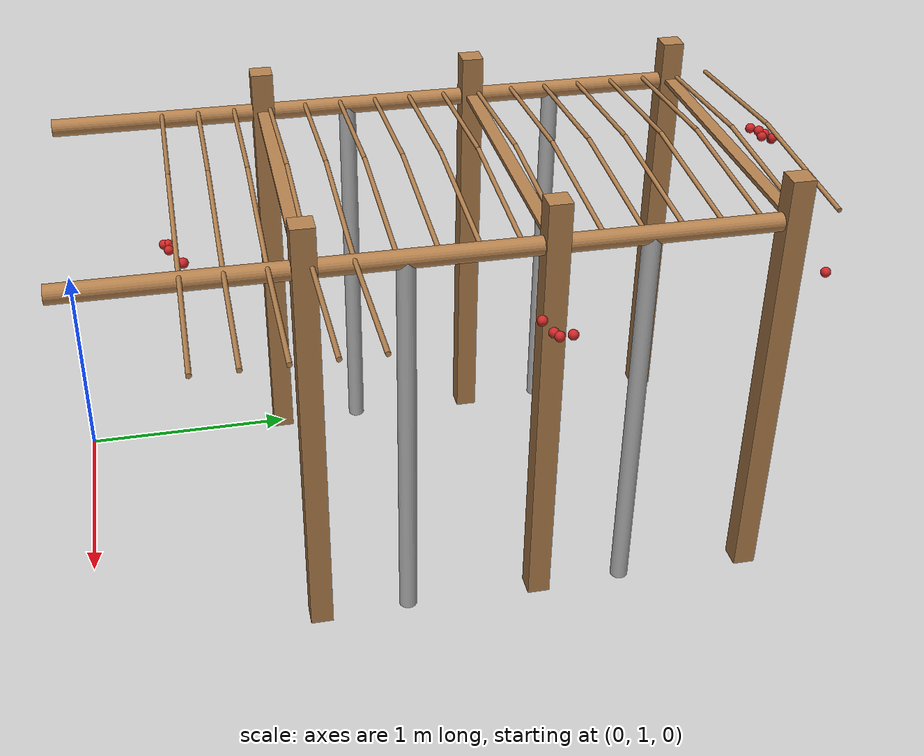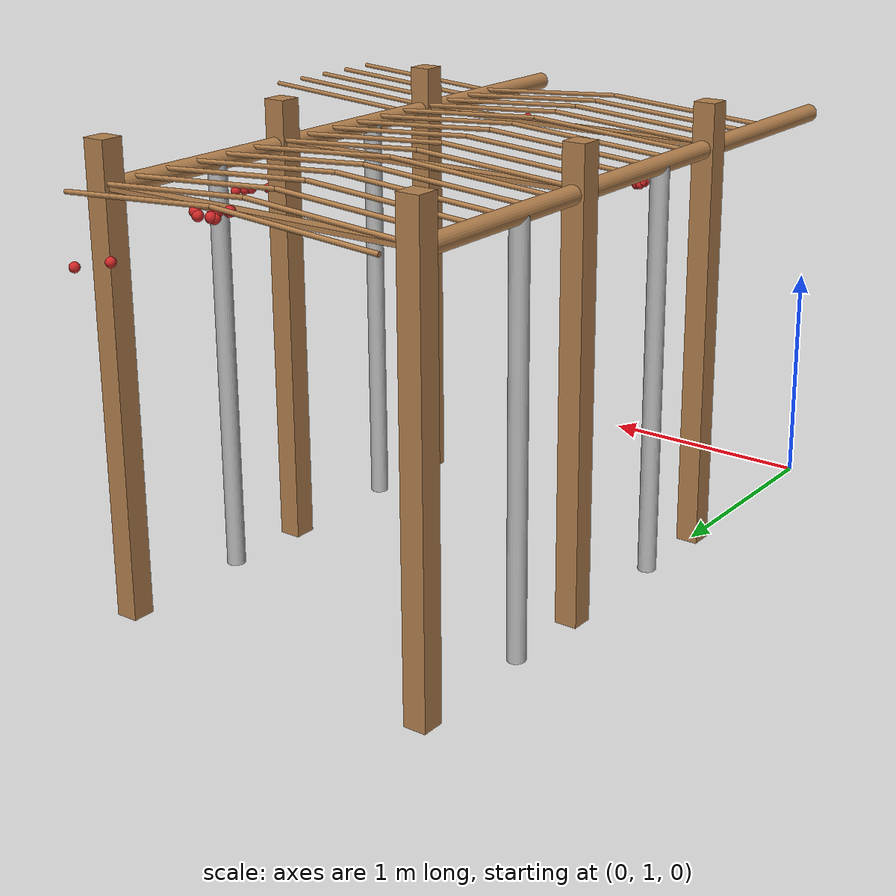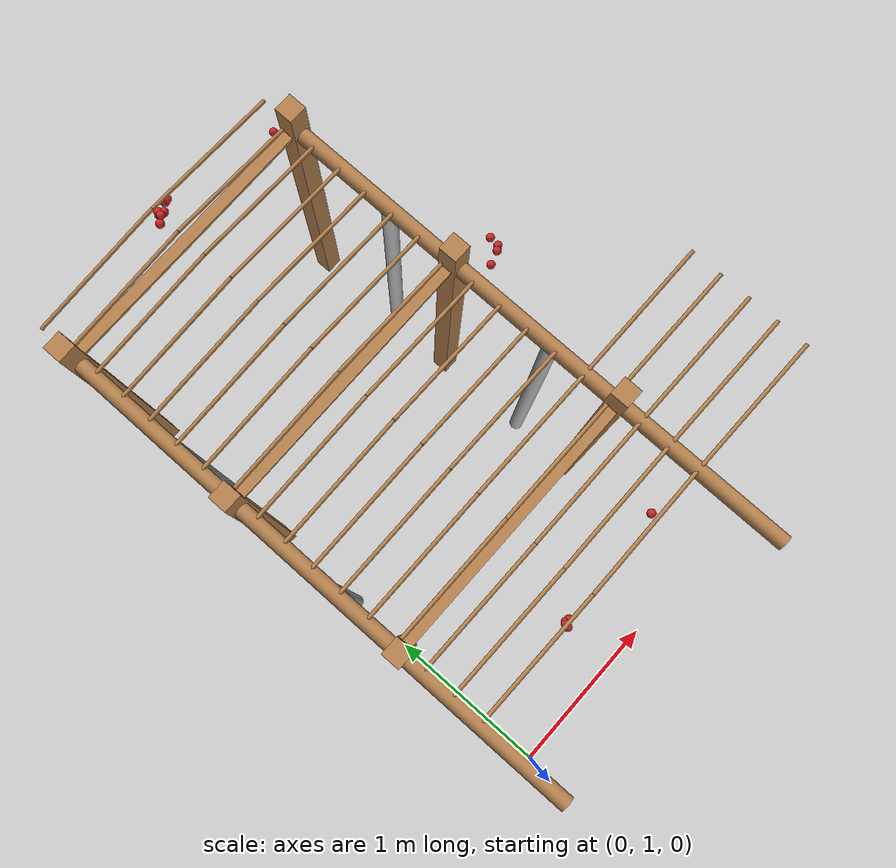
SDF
<sdf version="1.4">
 <model name="pergola">
  <include><name>post_2</name><pose>0.0 2.0 0 0 0 0</pose><uri>model://post</uri></include>
  <include><name>post_3</name><pose>0.0 3.0 0 0 0 0</pose><uri>model://post</uri></include>
  <include><name>post_4</name><pose>0.0 4.0 0 0 0 0</pose><uri>model://post</uri></include>
  <include><name>post_13</name><pose>1.5 2.0 0 0 0 0</pose><uri>model://post</uri></include>
  <include><name>post_14</name><pose>1.5 3.0 0 0 0 0</pose><uri>model://post</uri></include>
  <include><name>post_15</name><pose>1.5 4.0 0 0 0 0</pose><uri>model://post</uri></include>
  <link name="beam_2">
   <pose>0.75 2.0 1.81 0 0 0</pose>
   <collision name="collision"><geometry><box><size>1.5 0.06 0.02</size></box></geometry></collision>
   <visual name="visual">
    <geometry><box><size>1.5 0.06 0.02</size></box></geometry>
    <material><script><name>Gazebo/Wood</name></script></material>
   </visual>
   <inertial>
    <mass>5</mass>
    <inertia>
     <ixx>0.0016666666666666668</ixx>
     <ixy>0.0</ixy>
     <ixz>0.0</ixz>
     <iyy>0.9390000000000001</iyy>
     <iyz>0.0</iyz>
     <izz>0.9376666666666665</izz>
    </inertia>
   </inertial>
  </link>
  <link name="beam_3">
   <pose>0.75 3.0 1.81 0 0 0</pose>
   <collision name="collision"><geometry><box><size>1.5 0.06 0.02</size></box></geometry></collision>
   <visual name="visual">
    <geometry><box><size>1.5 0.06 0.02</size></box></geometry>
    <material><script><name>Gazebo/Wood</name></script></material>
   </visual>
   <inertial>
    <mass>5</mass>
    <inertia>
     <ixx>0.0016666666666666668</ixx>
     <ixy>0.0</ixy>
     <ixz>0.0</ixz>
     <iyy>0.9390000000000001</iyy>
     <iyz>0.0</iyz>
     <izz>0.9376666666666665</izz>
    </inertia>
   </inertial>
  </link>
  <link name="beam_4">
   <pose>0.75 4.0 1.81 0 0 0</pose>
   <collision name="collision"><geometry><box><size>1.5 0.06 0.02</size></box></geometry></collision>
   <visual name="visual">
    <geometry><box><size>1.5 0.06 0.02</size></box></geometry>
    <material><script><name>Gazebo/Wood</name></script></material>
   </visual>
   <inertial>
    <mass>5</mass>
    <inertia>
     <ixx>0.0016666666666666668</ixx>
     <ixy>0.0</ixy>
     <ixz>0.0</ixz>
     <iyy>0.9390000000000001</iyy>
     <iyz>0.0</iyz>
     <izz>0.9376666666666665</izz>
    </inertia>
   </inertial>
  </link>
  <include><name>tree_2</name><pose>0.0 2.4 0 0 0 0</pose><uri>model://tree_trunk</uri></include>
  <include><name>tree_3</name><pose>0.0 3.4 0 0 0 0</pose><uri>model://tree_trunk</uri></include>
  <include><name>tree_12</name><pose>1.5 2.4 0 0 0 0</pose><uri>model://tree_trunk</uri></include>
  <include><name>tree_13</name><pose>1.5 3.4 0 0 0 0</pose><uri>model://tree_trunk</uri></include>
  <link name="baseBranch_1">
   <pose>0.0 1.5 1.8 1.5707963267948966 0 0</pose>
   <collision name="collision">
    <geometry><cylinder><radius>0.04</radius><length>0.94</length></cylinder></geometry>
   </collision>
   <visual name="visual">
    <geometry><cylinder><radius>0.04</radius><length>0.94</length></cylinder></geometry>
    <material><script><name>Gazebo/WoodFloor</name></script></material>
   </visual>
   <inertial>
    <mass>10</mass>
    <inertia>
     <ixx>0.7403333333333334</ixx>
     <ixy>0.0</ixy>
     <ixz>0.0</ixz>
     <iyy>0.7403333333333334</iyy>
     <iyz>0.0</iyz>
     <izz>0.008</izz>
    </inertia>
   </inertial>
  </link>
  <link name="baseBranch_2">
   <pose>0.0 2.5 1.8 1.5707963267948966 0 0</pose>
   <collision name="collision">
    <geometry><cylinder><radius>0.04</radius><length>0.94</length></cylinder></geometry>
   </collision>
   <visual name="visual">
    <geometry><cylinder><radius>0.04</radius><length>0.94</length></cylinder></geometry>
    <material><script><name>Gazebo/WoodFloor</name></script></material>
   </visual>
   <inertial>
    <mass>10</mass>
    <inertia>
     <ixx>0.7403333333333334</ixx>
     <ixy>0.0</ixy>
     <ixz>0.0</ixz>
     <iyy>0.7403333333333334</iyy>
     <iyz>0.0</iyz>
     <izz>0.008</izz>
    </inertia>
   </inertial>
  </link>
  <link name="baseBranch_3">
   <pose>0.0 3.5 1.8 1.5707963267948966 0 0</pose>
   <collision name="collision">
    <geometry><cylinder><radius>0.04</radius><length>0.94</length></cylinder></geometry>
   </collision>
   <visual name="visual">
    <geometry><cylinder><radius>0.04</radius><length>0.94</length></cylinder></geometry>
    <material><script><name>Gazebo/WoodFloor</name></script></material>
   </visual>
   <inertial>
    <mass>10</mass>
    <inertia>
     <ixx>0.7403333333333334</ixx>
     <ixy>0.0</ixy>
     <ixz>0.0</ixz>
     <iyy>0.7403333333333334</iyy>
     <iyz>0.0</iyz>
     <izz>0.008</izz>
    </inertia>
   </inertial>
  </link>
  <link name="baseBranch_11">
   <pose>1.5 1.5 1.8 1.5707963267948966 0 0</pose>
   <collision name="collision">
    <geometry><cylinder><radius>0.04</radius><length>0.94</length></cylinder></geometry>
   </collision>
   <visual name="visual">
    <geometry><cylinder><radius>0.04</radius><length>0.94</length></cylinder></geometry>
    <material><script><name>Gazebo/WoodFloor</name></script></material>
   </visual>
   <inertial>
    <mass>10</mass>
    <inertia>
     <ixx>0.7403333333333334</ixx>
     <ixy>0.0</ixy>
     <ixz>0.0</ixz>
     <iyy>0.7403333333333334</iyy>
     <iyz>0.0</iyz>
     <izz>0.008</izz>
    </inertia>
   </inertial>
  </link>
  <link name="baseBranch_12">
   <pose>1.5 2.5 1.8 1.5707963267948966 0 0</pose>
   <collision name="collision">
    <geometry><cylinder><radius>0.04</radius><length>0.94</length></cylinder></geometry>
   </collision>
   <visual name="visual">
    <geometry><cylinder><radius>0.04</radius><length>0.94</length></cylinder></geometry>
    <material><script><name>Gazebo/WoodFloor</name></script></material>
   </visual>
   <inertial>
    <mass>10</mass>
    <inertia>
     <ixx>0.7403333333333334</ixx>
     <ixy>0.0</ixy>
     <ixz>0.0</ixz>
     <iyy>0.7403333333333334</iyy>
     <iyz>0.0</iyz>
     <izz>0.008</izz>
    </inertia>
   </inertial>
  </link>
  <link name="baseBranch_13">
   <pose>1.5 3.5 1.8 1.5707963267948966 0 0</pose>
   <collision name="collision">
    <geometry><cylinder><radius>0.04</radius><length>0.94</length></cylinder></geometry>
   </collision>
   <visual name="visual">
    <geometry><cylinder><radius>0.04</radius><length>0.94</length></cylinder></geometry>
    <material><script><name>Gazebo/WoodFloor</name></script></material>
   </visual>
   <inertial>
    <mass>10</mass>
    <inertia>
     <ixx>0.7403333333333334</ixx>
     <ixy>0.0</ixy>
     <ixz>0.0</ixz>
     <iyy>0.7403333333333334</iyy>
     <iyz>0.0</iyz>
     <izz>0.008</izz>
    </inertia>
   </inertial>
  </link>
  <link name="vine_18">
   <pose>0.375 1.53 1.85 0 1.5042281630190728 0</pose>
   <collision name="collision">
    <geometry><cylinder><radius>0.01</radius><length>0.7516648189186453</length></cylinder></geometry>
   </collision>
   <visual name="visual">
    <geometry><cylinder><radius>0.01</radius><length>0.7516648189186453</length></cylinder></geometry>
    <material><script><name>Gazebo/WoodFloor</name></script></material>
   </visual>
   <inertial>
    <mass>5</mass>
    <inertia>
     <ixx>0.23554166666666657</ixx>
     <ixy>0.0</ixy>
     <ixz>0.0</ixz>
     <iyy>0.23554166666666657</iyy>
     <iyz>0.0</iyz>
     <izz>0.00025</izz>
    </inertia>
   </inertial>
  </link>
  <link name="vine_19">
   <pose>1.125 1.53 1.85 0 -1.5042281630190728 0</pose>
   <collision name="collision">
    <geometry><cylinder><radius>0.01</radius><length>0.7516648189186453</length></cylinder></geometry>
   </collision>
   <visual name="visual">
    <geometry><cylinder><radius>0.01</radius><length>0.7516648189186453</length></cylinder></geometry>
    <material><script><name>Gazebo/WoodFloor</name></script></material>
   </visual>
   <inertial>
    <mass>5</mass>
    <inertia>
     <ixx>0.23554166666666657</ixx>
     <ixy>0.0</ixy>
     <ixz>0.0</ixz>
     <iyy>0.23554166666666657</iyy>
     <iyz>0.0</iyz>
     <izz>0.00025</izz>
    </inertia>
   </inertial>
  </link>
  <link name="vine_20">
   <pose>0.375 1.6966666666666665 1.85 0 1.5042281630190728 0</pose>
   <collision name="collision">
    <geometry><cylinder><radius>0.01</radius><length>0.7516648189186453</length></cylinder></geometry>
   </collision>
   <visual name="visual">
    <geometry><cylinder><radius>0.01</radius><length>0.7516648189186453</length></cylinder></geometry>
    <material><script><name>Gazebo/WoodFloor</name></script></material>
   </visual>
   <inertial>
    <mass>5</mass>
    <inertia>
     <ixx>0.23554166666666657</ixx>
     <ixy>0.0</ixy>
     <ixz>0.0</ixz>
     <iyy>0.23554166666666657</iyy>
     <iyz>0.0</iyz>
     <izz>0.00025</izz>
    </inertia>
   </inertial>
  </link>
  <link name="vine_21">
   <pose>1.125 1.6966666666666665 1.85 0 -1.5042281630190728 0</pose>
   <collision name="collision">
    <geometry><cylinder><radius>0.01</radius><length>0.7516648189186453</length></cylinder></geometry>
   </collision>
   <visual name="visual">
    <geometry><cylinder><radius>0.01</radius><length>0.7516648189186453</length></cylinder></geometry>
    <material><script><name>Gazebo/WoodFloor</name></script></material>
   </visual>
   <inertial>
    <mass>5</mass>
    <inertia>
     <ixx>0.23554166666666657</ixx>
     <ixy>0.0</ixy>
     <ixz>0.0</ixz>
     <iyy>0.23554166666666657</iyy>
     <iyz>0.0</iyz>
     <izz>0.00025</izz>
    </inertia>
   </inertial>
  </link>
  <link name="vine_22">
   <pose>0.375 1.8633333333333333 1.85 0 1.5042281630190728 0</pose>
   <collision name="collision">
    <geometry><cylinder><radius>0.01</radius><length>0.7516648189186453</length></cylinder></geometry>
   </collision>
   <visual name="visual">
    <geometry><cylinder><radius>0.01</radius><length>0.7516648189186453</length></cylinder></geometry>
    <material><script><name>Gazebo/WoodFloor</name></script></material>
   </visual>
   <inertial>
    <mass>5</mass>
    <inertia>
     <ixx>0.23554166666666657</ixx>
     <ixy>0.0</ixy>
     <ixz>0.0</ixz>
     <iyy>0.23554166666666657</iyy>
     <iyz>0.0</iyz>
     <izz>0.00025</izz>
    </inertia>
   </inertial>
  </link>
  <link name="vine_23">
   <pose>1.125 1.8633333333333333 1.85 0 -1.5042281630190728 0</pose>
   <collision name="collision">
    <geometry><cylinder><radius>0.01</radius><length>0.7516648189186453</length></cylinder></geometry>
   </collision>
   <visual name="visual">
    <geometry><cylinder><radius>0.01</radius><length>0.7516648189186453</length></cylinder></geometry>
    <material><script><name>Gazebo/WoodFloor</name></script></material>
   </visual>
   <inertial>
    <mass>5</mass>
    <inertia>
     <ixx>0.23554166666666657</ixx>
     <ixy>0.0</ixy>
     <ixz>0.0</ixz>
     <iyy>0.23554166666666657</iyy>
     <iyz>0.0</iyz>
     <izz>0.00025</izz>
    </inertia>
   </inertial>
  </link>
  <link name="vine_24">
   <pose>0.375 2.03 1.85 0 1.5042281630190728 0</pose>
   <collision name="collision">
    <geometry><cylinder><radius>0.01</radius><length>0.7516648189186453</length></cylinder></geometry>
   </collision>
   <visual name="visual">
    <geometry><cylinder><radius>0.01</radius><length>0.7516648189186453</length></cylinder></geometry>
    <material><script><name>Gazebo/WoodFloor</name></script></material>
   </visual>
   <inertial>
    <mass>5</mass>
    <inertia>
     <ixx>0.23554166666666657</ixx>
     <ixy>0.0</ixy>
     <ixz>0.0</ixz>
     <iyy>0.23554166666666657</iyy>
     <iyz>0.0</iyz>
     <izz>0.00025</izz>
    </inertia>
   </inertial>
  </link>
  <link name="vine_25">
   <pose>1.125 2.03 1.85 0 -1.5042281630190728 0</pose>
   <collision name="collision">
    <geometry><cylinder><radius>0.01</radius><length>0.7516648189186453</length></cylinder></geometry>
   </collision>
   <visual name="visual">
    <geometry><cylinder><radius>0.01</radius><length>0.7516648189186453</length></cylinder></geometry>
    <material><script><name>Gazebo/WoodFloor</name></script></material>
   </visual>
   <inertial>
    <mass>5</mass>
    <inertia>
     <ixx>0.23554166666666657</ixx>
     <ixy>0.0</ixy>
     <ixz>0.0</ixz>
     <iyy>0.23554166666666657</iyy>
     <iyz>0.0</iyz>
     <izz>0.00025</izz>
    </inertia>
   </inertial>
  </link>
  <link name="vine_26">
   <pose>0.375 2.1966666666666663 1.85 0 1.5042281630190728 0</pose>
   <collision name="collision">
    <geometry><cylinder><radius>0.01</radius><length>0.7516648189186453</length></cylinder></geometry>
   </collision>
   <visual name="visual">
    <geometry><cylinder><radius>0.01</radius><length>0.7516648189186453</length></cylinder></geometry>
    <material><script><name>Gazebo/WoodFloor</name></script></material>
   </visual>
   <inertial>
    <mass>5</mass>
    <inertia>
     <ixx>0.23554166666666657</ixx>
     <ixy>0.0</ixy>
     <ixz>0.0</ixz>
     <iyy>0.23554166666666657</iyy>
     <iyz>0.0</iyz>
     <izz>0.00025</izz>
    </inertia>
   </inertial>
  </link>
  <link name="vine_27">
   <pose>1.125 2.1966666666666663 1.85 0 -1.5042281630190728 0</pose>
   <collision name="collision">
    <geometry><cylinder><radius>0.01</radius><length>0.7516648189186453</length></cylinder></geometry>
   </collision>
   <visual name="visual">
    <geometry><cylinder><radius>0.01</radius><length>0.7516648189186453</length></cylinder></geometry>
    <material><script><name>Gazebo/WoodFloor</name></script></material>
   </visual>
   <inertial>
    <mass>5</mass>
    <inertia>
     <ixx>0.23554166666666657</ixx>
     <ixy>0.0</ixy>
     <ixz>0.0</ixz>
     <iyy>0.23554166666666657</iyy>
     <iyz>0.0</iyz>
     <izz>0.00025</izz>
    </inertia>
   </inertial>
  </link>
  <link name="vine_28">
   <pose>0.375 2.363333333333333 1.85 0 1.5042281630190728 0</pose>
   <collision name="collision">
    <geometry><cylinder><radius>0.01</radius><length>0.7516648189186453</length></cylinder></geometry>
   </collision>
   <visual name="visual">
    <geometry><cylinder><radius>0.01</radius><length>0.7516648189186453</length></cylinder></geometry>
    <material><script><name>Gazebo/WoodFloor</name></script></material>
   </visual>
   <inertial>
    <mass>5</mass>
    <inertia>
     <ixx>0.23554166666666657</ixx>
     <ixy>0.0</ixy>
     <ixz>0.0</ixz>
     <iyy>0.23554166666666657</iyy>
     <iyz>0.0</iyz>
     <izz>0.00025</izz>
    </inertia>
   </inertial>
  </link>
  <link name="vine_29">
   <pose>1.125 2.363333333333333 1.85 0 -1.5042281630190728 0</pose>
   <collision name="collision">
    <geometry><cylinder><radius>0.01</radius><length>0.7516648189186453</length></cylinder></geometry>
   </collision>
   <visual name="visual">
    <geometry><cylinder><radius>0.01</radius><length>0.7516648189186453</length></cylinder></geometry>
    <material><script><name>Gazebo/WoodFloor</name></script></material>
   </visual>
   <inertial>
    <mass>5</mass>
    <inertia>
     <ixx>0.23554166666666657</ixx>
     <ixy>0.0</ixy>
     <ixz>0.0</ixz>
     <iyy>0.23554166666666657</iyy>
     <iyz>0.0</iyz>
     <izz>0.00025</izz>
    </inertia>
   </inertial>
  </link>
  <link name="vine_30">
   <pose>0.375 2.53 1.85 0 1.5042281630190728 0</pose>
   <collision name="collision">
    <geometry><cylinder><radius>0.01</radius><length>0.7516648189186453</length></cylinder></geometry>
   </collision>
   <visual name="visual">
    <geometry><cylinder><radius>0.01</radius><length>0.7516648189186453</length></cylinder></geometry>
    <material><script><name>Gazebo/WoodFloor</name></script></material>
   </visual>
   <inertial>
    <mass>5</mass>
    <inertia>
     <ixx>0.23554166666666657</ixx>
     <ixy>0.0</ixy>
     <ixz>0.0</ixz>
     <iyy>0.23554166666666657</iyy>
     <iyz>0.0</iyz>
     <izz>0.00025</izz>
    </inertia>
   </inertial>
  </link>
  <link name="vine_31">
   <pose>1.125 2.53 1.85 0 -1.5042281630190728 0</pose>
   <collision name="collision">
    <geometry><cylinder><radius>0.01</radius><length>0.7516648189186453</length></cylinder></geometry>
   </collision>
   <visual name="visual">
    <geometry><cylinder><radius>0.01</radius><length>0.7516648189186453</length></cylinder></geometry>
    <material><script><name>Gazebo/WoodFloor</name></script></material>
   </visual>
   <inertial>
    <mass>5</mass>
    <inertia>
     <ixx>0.23554166666666657</ixx>
     <ixy>0.0</ixy>
     <ixz>0.0</ixz>
     <iyy>0.23554166666666657</iyy>
     <iyz>0.0</iyz>
     <izz>0.00025</izz>
    </inertia>
   </inertial>
  </link>
  <link name="vine_32">
   <pose>0.375 2.6966666666666663 1.85 0 1.5042281630190728 0</pose>
   <collision name="collision">
    <geometry><cylinder><radius>0.01</radius><length>0.7516648189186453</length></cylinder></geometry>
   </collision>
   <visual name="visual">
    <geometry><cylinder><radius>0.01</radius><length>0.7516648189186453</length></cylinder></geometry>
    <material><script><name>Gazebo/WoodFloor</name></script></material>
   </visual>
   <inertial>
    <mass>5</mass>
    <inertia>
     <ixx>0.23554166666666657</ixx>
     <ixy>0.0</ixy>
     <ixz>0.0</ixz>
     <iyy>0.23554166666666657</iyy>
     <iyz>0.0</iyz>
     <izz>0.00025</izz>
    </inertia>
   </inertial>
  </link>
  <link name="vine_33">
   <pose>1.125 2.6966666666666663 1.85 0 -1.5042281630190728 0</pose>
   <collision name="collision">
    <geometry><cylinder><radius>0.01</radius><length>0.7516648189186453</length></cylinder></geometry>
   </collision>
   <visual name="visual">
    <geometry><cylinder><radius>0.01</radius><length>0.7516648189186453</length></cylinder></geometry>
    <material><script><name>Gazebo/WoodFloor</name></script></material>
   </visual>
   <inertial>
    <mass>5</mass>
    <inertia>
     <ixx>0.23554166666666657</ixx>
     <ixy>0.0</ixy>
     <ixz>0.0</ixz>
     <iyy>0.23554166666666657</iyy>
     <iyz>0.0</iyz>
     <izz>0.00025</izz>
    </inertia>
   </inertial>
  </link>
  <link name="vine_34">
   <pose>0.375 2.863333333333333 1.85 0 1.5042281630190728 0</pose>
   <collision name="collision">
    <geometry><cylinder><radius>0.01</radius><length>0.7516648189186453</length></cylinder></geometry>
   </collision>
   <visual name="visual">
    <geometry><cylinder><radius>0.01</radius><length>0.7516648189186453</length></cylinder></geometry>
    <material><script><name>Gazebo/WoodFloor</name></script></material>
   </visual>
   <inertial>
    <mass>5</mass>
    <inertia>
     <ixx>0.23554166666666657</ixx>
     <ixy>0.0</ixy>
     <ixz>0.0</ixz>
     <iyy>0.23554166666666657</iyy>
     <iyz>0.0</iyz>
     <izz>0.00025</izz>
    </inertia>
   </inertial>
  </link>
  <link name="vine_35">
   <pose>1.125 2.863333333333333 1.85 0 -1.5042281630190728 0</pose>
   <collision name="collision">
    <geometry><cylinder><radius>0.01</radius><length>0.7516648189186453</length></cylinder></geometry>
   </collision>
   <visual name="visual">
    <geometry><cylinder><radius>0.01</radius><length>0.7516648189186453</length></cylinder></geometry>
    <material><script><name>Gazebo/WoodFloor</name></script></material>
   </visual>
   <inertial>
    <mass>5</mass>
    <inertia>
     <ixx>0.23554166666666657</ixx>
     <ixy>0.0</ixy>
     <ixz>0.0</ixz>
     <iyy>0.23554166666666657</iyy>
     <iyz>0.0</iyz>
     <izz>0.00025</izz>
    </inertia>
   </inertial>
  </link>
  <link name="vine_36">
   <pose>0.375 3.03 1.85 0 1.5042281630190728 0</pose>
   <collision name="collision">
    <geometry><cylinder><radius>0.01</radius><length>0.7516648189186453</length></cylinder></geometry>
   </collision>
   <visual name="visual">
    <geometry><cylinder><radius>0.01</radius><length>0.7516648189186453</length></cylinder></geometry>
    <material><script><name>Gazebo/WoodFloor</name></script></material>
   </visual>
   <inertial>
    <mass>5</mass>
    <inertia>
     <ixx>0.23554166666666657</ixx>
     <ixy>0.0</ixy>
     <ixz>0.0</ixz>
     <iyy>0.23554166666666657</iyy>
     <iyz>0.0</iyz>
     <izz>0.00025</izz>
    </inertia>
   </inertial>
  </link>
  <link name="vine_37">
   <pose>1.125 3.03 1.85 0 -1.5042281630190728 0</pose>
   <collision name="collision">
    <geometry><cylinder><radius>0.01</radius><length>0.7516648189186453</length></cylinder></geometry>
   </collision>
   <visual name="visual">
    <geometry><cylinder><radius>0.01</radius><length>0.7516648189186453</length></cylinder></geometry>
    <material><script><name>Gazebo/WoodFloor</name></script></material>
   </visual>
   <inertial>
    <mass>5</mass>
    <inertia>
     <ixx>0.23554166666666657</ixx>
     <ixy>0.0</ixy>
     <ixz>0.0</ixz>
     <iyy>0.23554166666666657</iyy>
     <iyz>0.0</iyz>
     <izz>0.00025</izz>
    </inertia>
   </inertial>
  </link>
  <link name="vine_38">
   <pose>0.375 3.1966666666666663 1.85 0 1.5042281630190728 0</pose>
   <collision name="collision">
    <geometry><cylinder><radius>0.01</radius><length>0.7516648189186453</length></cylinder></geometry>
   </collision>
   <visual name="visual">
    <geometry><cylinder><radius>0.01</radius><length>0.7516648189186453</length></cylinder></geometry>
    <material><script><name>Gazebo/WoodFloor</name></script></material>
   </visual>
   <inertial>
    <mass>5</mass>
    <inertia>
     <ixx>0.23554166666666657</ixx>
     <ixy>0.0</ixy>
     <ixz>0.0</ixz>
     <iyy>0.23554166666666657</iyy>
     <iyz>0.0</iyz>
     <izz>0.00025</izz>
    </inertia>
   </inertial>
  </link>
  <link name="vine_39">
   <pose>1.125 3.1966666666666663 1.85 0 -1.5042281630190728 0</pose>
   <collision name="collision">
    <geometry><cylinder><radius>0.01</radius><length>0.7516648189186453</length></cylinder></geometry>
   </collision>
   <visual name="visual">
    <geometry><cylinder><radius>0.01</radius><length>0.7516648189186453</length></cylinder></geometry>
    <material><script><name>Gazebo/WoodFloor</name></script></material>
   </visual>
   <inertial>
    <mass>5</mass>
    <inertia>
     <ixx>0.23554166666666657</ixx>
     <ixy>0.0</ixy>
     <ixz>0.0</ixz>
     <iyy>0.23554166666666657</iyy>
     <iyz>0.0</iyz>
     <izz>0.00025</izz>
    </inertia>
   </inertial>
  </link>
  <link name="vine_40">
   <pose>0.375 3.363333333333333 1.85 0 1.5042281630190728 0</pose>
   <collision name="collision">
    <geometry><cylinder><radius>0.01</radius><length>0.7516648189186453</length></cylinder></geometry>
   </collision>
   <visual name="visual">
    <geometry><cylinder><radius>0.01</radius><length>0.7516648189186453</length></cylinder></geometry>
    <material><script><name>Gazebo/WoodFloor</name></script></material>
   </visual>
   <inertial>
    <mass>5</mass>
    <inertia>
     <ixx>0.23554166666666657</ixx>
     <ixy>0.0</ixy>
     <ixz>0.0</ixz>
     <iyy>0.23554166666666657</iyy>
     <iyz>0.0</iyz>
     <izz>0.00025</izz>
    </inertia>
   </inertial>
  </link>
  <link name="vine_41">
   <pose>1.125 3.363333333333333 1.85 0 -1.5042281630190728 0</pose>
   <collision name="collision">
    <geometry><cylinder><radius>0.01</radius><length>0.7516648189186453</length></cylinder></geometry>
   </collision>
   <visual name="visual">
    <geometry><cylinder><radius>0.01</radius><length>0.7516648189186453</length></cylinder></geometry>
    <material><script><name>Gazebo/WoodFloor</name></script></material>
   </visual>
   <inertial>
    <mass>5</mass>
    <inertia>
     <ixx>0.23554166666666657</ixx>
     <ixy>0.0</ixy>
     <ixz>0.0</ixz>
     <iyy>0.23554166666666657</iyy>
     <iyz>0.0</iyz>
     <izz>0.00025</izz>
    </inertia>
   </inertial>
  </link>
  <link name="vine_42">
   <pose>0.375 3.53 1.85 0 1.5042281630190728 0</pose>
   <collision name="collision">
    <geometry><cylinder><radius>0.01</radius><length>0.7516648189186453</length></cylinder></geometry>
   </collision>
   <visual name="visual">
    <geometry><cylinder><radius>0.01</radius><length>0.7516648189186453</length></cylinder></geometry>
    <material><script><name>Gazebo/WoodFloor</name></script></material>
   </visual>
   <inertial>
    <mass>5</mass>
    <inertia>
     <ixx>0.23554166666666657</ixx>
     <ixy>0.0</ixy>
     <ixz>0.0</ixz>
     <iyy>0.23554166666666657</iyy>
     <iyz>0.0</iyz>
     <izz>0.00025</izz>
    </inertia>
   </inertial>
  </link>
  <link name="vine_43">
   <pose>1.125 3.53 1.85 0 -1.5042281630190728 0</pose>
   <collision name="collision">
    <geometry><cylinder><radius>0.01</radius><length>0.7516648189186453</length></cylinder></geometry>
   </collision>
   <visual name="visual">
    <geometry><cylinder><radius>0.01</radius><length>0.7516648189186453</length></cylinder></geometry>
    <material><script><name>Gazebo/WoodFloor</name></script></material>
   </visual>
   <inertial>
    <mass>5</mass>
    <inertia>
     <ixx>0.23554166666666657</ixx>
     <ixy>0.0</ixy>
     <ixz>0.0</ixz>
     <iyy>0.23554166666666657</iyy>
     <iyz>0.0</iyz>
     <izz>0.00025</izz>
    </inertia>
   </inertial>
  </link>
  <link name="vine_44">
   <pose>0.375 3.6966666666666663 1.85 0 1.5042281630190728 0</pose>
   <collision name="collision">
    <geometry><cylinder><radius>0.01</radius><length>0.7516648189186453</length></cylinder></geometry>
   </collision>
   <visual name="visual">
    <geometry><cylinder><radius>0.01</radius><length>0.7516648189186453</length></cylinder></geometry>
    <material><script><name>Gazebo/WoodFloor</name></script></material>
   </visual>
   <inertial>
    <mass>5</mass>
    <inertia>
     <ixx>0.23554166666666657</ixx>
     <ixy>0.0</ixy>
     <ixz>0.0</ixz>
     <iyy>0.23554166666666657</iyy>
     <iyz>0.0</iyz>
     <izz>0.00025</izz>
    </inertia>
   </inertial>
  </link>
  <link name="vine_45">
   <pose>1.125 3.6966666666666663 1.85 0 -1.5042281630190728 0</pose>
   <collision name="collision">
    <geometry><cylinder><radius>0.01</radius><length>0.7516648189186453</length></cylinder></geometry>
   </collision>
   <visual name="visual">
    <geometry><cylinder><radius>0.01</radius><length>0.7516648189186453</length></cylinder></geometry>
    <material><script><name>Gazebo/WoodFloor</name></script></material>
   </visual>
   <inertial>
    <mass>5</mass>
    <inertia>
     <ixx>0.23554166666666657</ixx>
     <ixy>0.0</ixy>
     <ixz>0.0</ixz>
     <iyy>0.23554166666666657</iyy>
     <iyz>0.0</iyz>
     <izz>0.00025</izz>
    </inertia>
   </inertial>
  </link>
  <link name="vine_46">
   <pose>0.375 3.863333333333333 1.85 0 1.5042281630190728 0</pose>
   <collision name="collision">
    <geometry><cylinder><radius>0.01</radius><length>0.7516648189186453</length></cylinder></geometry>
   </collision>
   <visual name="visual">
    <geometry><cylinder><radius>0.01</radius><length>0.7516648189186453</length></cylinder></geometry>
    <material><script><name>Gazebo/WoodFloor</name></script></material>
   </visual>
   <inertial>
    <mass>5</mass>
    <inertia>
     <ixx>0.23554166666666657</ixx>
     <ixy>0.0</ixy>
     <ixz>0.0</ixz>
     <iyy>0.23554166666666657</iyy>
     <iyz>0.0</iyz>
     <izz>0.00025</izz>
    </inertia>
   </inertial>
  </link>
  <link name="vine_47">
   <pose>1.125 3.863333333333333 1.85 0 -1.5042281630190728 0</pose>
   <collision name="collision">
    <geometry><cylinder><radius>0.01</radius><length>0.7516648189186453</length></cylinder></geometry>
   </collision>
   <visual name="visual">
    <geometry><cylinder><radius>0.01</radius><length>0.7516648189186453</length></cylinder></geometry>
    <material><script><name>Gazebo/WoodFloor</name></script></material>
   </visual>
   <inertial>
    <mass>5</mass>
    <inertia>
     <ixx>0.23554166666666657</ixx>
     <ixy>0.0</ixy>
     <ixz>0.0</ixz>
     <iyy>0.23554166666666657</iyy>
     <iyz>0.0</iyz>
     <izz>0.00025</izz>
    </inertia>
   </inertial>
  </link>
  <link name="vine_48">
   <pose>0.375 4.03 1.85 0 1.5042281630190728 0</pose>
   <collision name="collision">
    <geometry><cylinder><radius>0.01</radius><length>0.7516648189186453</length></cylinder></geometry>
   </collision>
   <visual name="visual">
    <geometry><cylinder><radius>0.01</radius><length>0.7516648189186453</length></cylinder></geometry>
    <material><script><name>Gazebo/WoodFloor</name></script></material>
   </visual>
   <inertial>
    <mass>5</mass>
    <inertia>
     <ixx>0.23554166666666657</ixx>
     <ixy>0.0</ixy>
     <ixz>0.0</ixz>
     <iyy>0.23554166666666657</iyy>
     <iyz>0.0</iyz>
     <izz>0.00025</izz>
    </inertia>
   </inertial>
  </link>
  <link name="vine_49">
   <pose>1.125 4.03 1.85 0 -1.5042281630190728 0</pose>
   <collision name="collision">
    <geometry><cylinder><radius>0.01</radius><length>0.7516648189186453</length></cylinder></geometry>
   </collision>
   <visual name="visual">
    <geometry><cylinder><radius>0.01</radius><length>0.7516648189186453</length></cylinder></geometry>
    <material><script><name>Gazebo/WoodFloor</name></script></material>
   </visual>
   <inertial>
    <mass>5</mass>
    <inertia>
     <ixx>0.23554166666666657</ixx>
     <ixy>0.0</ixy>
     <ixz>0.0</ixz>
     <iyy>0.23554166666666657</iyy>
     <iyz>0.0</iyz>
     <izz>0.00025</izz>
    </inertia>
   </inertial>
  </link>
  <link name="vine_50">
   <pose>0.375 4.196666666666666 1.85 0 1.5042281630190728 0</pose>
   <collision name="collision">
    <geometry><cylinder><radius>0.01</radius><length>0.7516648189186453</length></cylinder></geometry>
   </collision>
   <visual name="visual">
    <geometry><cylinder><radius>0.01</radius><length>0.7516648189186453</length></cylinder></geometry>
    <material><script><name>Gazebo/WoodFloor</name></script></material>
   </visual>
   <inertial>
    <mass>5</mass>
    <inertia>
     <ixx>0.23554166666666657</ixx>
     <ixy>0.0</ixy>
     <ixz>0.0</ixz>
     <iyy>0.23554166666666657</iyy>
     <iyz>0.0</iyz>
     <izz>0.00025</izz>
    </inertia>
   </inertial>
  </link>
  <link name="vine_51">
   <pose>1.125 4.196666666666666 1.85 0 -1.5042281630190728 0</pose>
   <collision name="collision">
    <geometry><cylinder><radius>0.01</radius><length>0.7516648189186453</length></cylinder></geometry>
   </collision>
   <visual name="visual">
    <geometry><cylinder><radius>0.01</radius><length>0.7516648189186453</length></cylinder></geometry>
    <material><script><name>Gazebo/WoodFloor</name></script></material>
   </visual>
   <inertial>
    <mass>5</mass>
    <inertia>
     <ixx>0.23554166666666657</ixx>
     <ixy>0.0</ixy>
     <ixz>0.0</ixz>
     <iyy>0.23554166666666657</iyy>
     <iyz>0.0</iyz>
     <izz>0.00025</izz>
    </inertia>
   </inertial>
  </link>
  <link name="vine_138">
   <pose>1.875 1.53 1.85 0 1.5042281630190728 0</pose>
   <collision name="collision">
    <geometry><cylinder><radius>0.01</radius><length>0.7516648189186453</length></cylinder></geometry>
   </collision>
   <visual name="visual">
    <geometry><cylinder><radius>0.01</radius><length>0.7516648189186453</length></cylinder></geometry>
    <material><script><name>Gazebo/WoodFloor</name></script></material>
   </visual>
   <inertial>
    <mass>5</mass>
    <inertia>
     <ixx>0.23554166666666657</ixx>
     <ixy>0.0</ixy>
     <ixz>0.0</ixz>
     <iyy>0.23554166666666657</iyy>
     <iyz>0.0</iyz>
     <izz>0.00025</izz>
    </inertia>
   </inertial>
  </link>
  <link name="vine_140">
   <pose>1.875 1.6966666666666665 1.85 0 1.5042281630190728 0</pose>
   <collision name="collision">
    <geometry><cylinder><radius>0.01</radius><length>0.7516648189186453</length></cylinder></geometry>
   </collision>
   <visual name="visual">
    <geometry><cylinder><radius>0.01</radius><length>0.7516648189186453</length></cylinder></geometry>
    <material><script><name>Gazebo/WoodFloor</name></script></material>
   </visual>
   <inertial>
    <mass>5</mass>
    <inertia>
     <ixx>0.23554166666666657</ixx>
     <ixy>0.0</ixy>
     <ixz>0.0</ixz>
     <iyy>0.23554166666666657</iyy>
     <iyz>0.0</iyz>
     <izz>0.00025</izz>
    </inertia>
   </inertial>
  </link>
  <link name="vine_142">
   <pose>1.875 1.8633333333333333 1.85 0 1.5042281630190728 0</pose>
   <collision name="collision">
    <geometry><cylinder><radius>0.01</radius><length>0.7516648189186453</length></cylinder></geometry>
   </collision>
   <visual name="visual">
    <geometry><cylinder><radius>0.01</radius><length>0.7516648189186453</length></cylinder></geometry>
    <material><script><name>Gazebo/WoodFloor</name></script></material>
   </visual>
   <inertial>
    <mass>5</mass>
    <inertia>
     <ixx>0.23554166666666657</ixx>
     <ixy>0.0</ixy>
     <ixz>0.0</ixz>
     <iyy>0.23554166666666657</iyy>
     <iyz>0.0</iyz>
     <izz>0.00025</izz>
    </inertia>
   </inertial>
  </link>
  <link name="vine_144">
   <pose>1.875 2.03 1.85 0 1.5042281630190728 0</pose>
   <collision name="collision">
    <geometry><cylinder><radius>0.01</radius><length>0.7516648189186453</length></cylinder></geometry>
   </collision>
   <visual name="visual">
    <geometry><cylinder><radius>0.01</radius><length>0.7516648189186453</length></cylinder></geometry>
    <material><script><name>Gazebo/WoodFloor</name></script></material>
   </visual>
   <inertial>
    <mass>5</mass>
    <inertia>
     <ixx>0.23554166666666657</ixx>
     <ixy>0.0</ixy>
     <ixz>0.0</ixz>
     <iyy>0.23554166666666657</iyy>
     <iyz>0.0</iyz>
     <izz>0.00025</izz>
    </inertia>
   </inertial>
  </link>
  <link name="vine_146">
   <pose>1.875 2.1966666666666663 1.85 0 1.5042281630190728 0</pose>
   <collision name="collision">
    <geometry><cylinder><radius>0.01</radius><length>0.7516648189186453</length></cylinder></geometry>
   </collision>
   <visual name="visual">
    <geometry><cylinder><radius>0.01</radius><length>0.7516648189186453</length></cylinder></geometry>
    <material><script><name>Gazebo/WoodFloor</name></script></material>
   </visual>
   <inertial>
    <mass>5</mass>
    <inertia>
     <ixx>0.23554166666666657</ixx>
     <ixy>0.0</ixy>
     <ixz>0.0</ixz>
     <iyy>0.23554166666666657</iyy>
     <iyz>0.0</iyz>
     <izz>0.00025</izz>
    </inertia>
   </inertial>
  </link>
  <link name="fruit_42">
   <pose>1.387151242374983 4.102352750130183 1.548817306246034 0 0 0</pose>
   <collision name="fruit_collision_42"><geometry><sphere><radius>0.022</radius></sphere></geometry></collision>
   <visual name="visual">
    <geometry><sphere><radius>0.022</radius></sphere></geometry>
    <material><script><name>Gazebo/Red</name></script></material>
   </visual>
   <inertial>
    <mass>0.05</mass>
    <inertia>
     <ixx>9.679999999999999e-06</ixx>
     <ixy>0.0</ixy>
     <ixz>0.0</ixz>
     <iyy>9.679999999999999e-06</iyy>
     <iyz>0.0</iyz>
     <izz>9.679999999999999e-06</izz>
    </inertia>
   </inertial>
   <sensor name="fruit_contact_42" type="contact">
    <contact><collision>fruit_collision_42</collision></contact>
   </sensor>
  </link>
  <link name="fruit_102">
   <pose>1.6827823837685187 2.9064198764234295 1.5666217489372825 0 0 0</pose>
   <collision name="fruit_collision_102"><geometry><sphere><radius>0.022</radius></sphere></geometry></collision>
   <visual name="visual">
    <geometry><sphere><radius>0.022</radius></sphere></geometry>
    <material><script><name>Gazebo/Red</name></script></material>
   </visual>
   <inertial>
    <mass>0.05</mass>
    <inertia>
     <ixx>9.679999999999999e-06</ixx>
     <ixy>0.0</ixy>
     <ixz>0.0</ixz>
     <iyy>9.679999999999999e-06</iyy>
     <iyz>0.0</iyz>
     <izz>9.679999999999999e-06</izz>
    </inertia>
   </inertial>
   <sensor name="fruit_contact_102" type="contact">
    <contact><collision>fruit_collision_102</collision></contact>
   </sensor>
  </link>
  <link name="fruit_110">
   <pose>0.7249817107334292 4.130409069819886 1.8484888722633477 0 0 0</pose>
   <collision name="fruit_collision_110"><geometry><sphere><radius>0.022</radius></sphere></geometry></collision>
   <visual name="visual">
    <geometry><sphere><radius>0.022</radius></sphere></geometry>
    <material><script><name>Gazebo/Red</name></script></material>
   </visual>
   <inertial>
    <mass>0.05</mass>
    <inertia>
     <ixx>9.679999999999999e-06</ixx>
     <ixy>0.0</ixy>
     <ixz>0.0</ixz>
     <iyy>9.679999999999999e-06</iyy>
     <iyz>0.0</iyz>
     <izz>9.679999999999999e-06</izz>
    </inertia>
   </inertial>
   <sensor name="fruit_contact_110" type="contact">
    <contact><collision>fruit_collision_110</collision></contact>
   </sensor>
  </link>
  <link name="fruit_112">
   <pose>1.760160965268216 2.93188193672952 1.5568668436510076 0 0 0</pose>
   <collision name="fruit_collision_112"><geometry><sphere><radius>0.022</radius></sphere></geometry></collision>
   <visual name="visual">
    <geometry><sphere><radius>0.022</radius></sphere></geometry>
    <material><script><name>Gazebo/Red</name></script></material>
   </visual>
   <inertial>
    <mass>0.05</mass>
    <inertia>
     <ixx>9.679999999999999e-06</ixx>
     <ixy>0.0</ixy>
     <ixz>0.0</ixz>
     <iyy>9.679999999999999e-06</iyy>
     <iyz>0.0</iyz>
     <izz>9.679999999999999e-06</izz>
    </inertia>
   </inertial>
   <sensor name="fruit_contact_112" type="contact">
    <contact><collision>fruit_collision_112</collision></contact>
   </sensor>
  </link>
  <link name="fruit_122">
   <pose>0.7801826963107089 4.164511635175507 1.8297223680367765 0 0 0</pose>
   <collision name="fruit_collision_122"><geometry><sphere><radius>0.022</radius></sphere></geometry></collision>
   <visual name="visual">
    <geometry><sphere><radius>0.022</radius></sphere></geometry>
    <material><script><name>Gazebo/Red</name></script></material>
   </visual>
   <inertial>
    <mass>0.05</mass>
    <inertia>
     <ixx>9.679999999999999e-06</ixx>
     <ixy>0.0</ixy>
     <ixz>0.0</ixz>
     <iyy>9.679999999999999e-06</iyy>
     <iyz>0.0</iyz>
     <izz>9.679999999999999e-06</izz>
    </inertia>
   </inertial>
   <sensor name="fruit_contact_122" type="contact">
    <contact><collision>fruit_collision_122</collision></contact>
   </sensor>
  </link>
  <link name="fruit_136">
   <pose>1.494022187935942 4.187493754388162 1.5309728933122986 0 0 0</pose>
   <collision name="fruit_collision_136"><geometry><sphere><radius>0.022</radius></sphere></geometry></collision>
   <visual name="visual">
    <geometry><sphere><radius>0.022</radius></sphere></geometry>
    <material><script><name>Gazebo/Red</name></script></material>
   </visual>
   <inertial>
    <mass>0.05</mass>
    <inertia>
     <ixx>9.679999999999999e-06</ixx>
     <ixy>0.0</ixy>
     <ixz>0.0</ixz>
     <iyy>9.679999999999999e-06</iyy>
     <iyz>0.0</iyz>
     <izz>9.679999999999999e-06</izz>
    </inertia>
   </inertial>
   <sensor name="fruit_contact_136" type="contact">
    <contact><collision>fruit_collision_136</collision></contact>
   </sensor>
  </link>
  <link name="fruit_156">
   <pose>0.8186601953794038 4.194128656359614 1.8324902962870262 0 0 0</pose>
   <collision name="fruit_collision_156"><geometry><sphere><radius>0.022</radius></sphere></geometry></collision>
   <visual name="visual">
    <geometry><sphere><radius>0.022</radius></sphere></geometry>
    <material><script><name>Gazebo/Red</name></script></material>
   </visual>
   <inertial>
    <mass>0.05</mass>
    <inertia>
     <ixx>9.679999999999999e-06</ixx>
     <ixy>0.0</ixy>
     <ixz>0.0</ixz>
     <iyy>9.679999999999999e-06</iyy>
     <iyz>0.0</iyz>
     <izz>9.679999999999999e-06</izz>
    </inertia>
   </inertial>
   <sensor name="fruit_contact_156" type="contact">
    <contact><collision>fruit_collision_156</collision></contact>
   </sensor>
  </link>
  <link name="fruit_171">
   <pose>1.7845071028964226 2.948468625394022 1.5532005781835931 0 0 0</pose>
   <collision name="fruit_collision_171"><geometry><sphere><radius>0.022</radius></sphere></geometry></collision>
   <visual name="visual">
    <geometry><sphere><radius>0.022</radius></sphere></geometry>
    <material><script><name>Gazebo/Red</name></script></material>
   </visual>
   <inertial>
    <mass>0.05</mass>
    <inertia>
     <ixx>9.679999999999999e-06</ixx>
     <ixy>0.0</ixy>
     <ixz>0.0</ixz>
     <iyy>9.679999999999999e-06</iyy>
     <iyz>0.0</iyz>
     <izz>9.679999999999999e-06</izz>
    </inertia>
   </inertial>
   <sensor name="fruit_contact_171" type="contact">
    <contact><collision>fruit_collision_171</collision></contact>
   </sensor>
  </link>
  <link name="fruit_181">
   <pose>0.6177133496355198 1.5047117997520756 1.4626929307832415 0 0 0</pose>
   <collision name="fruit_collision_181"><geometry><sphere><radius>0.022</radius></sphere></geometry></collision>
   <visual name="visual">
    <geometry><sphere><radius>0.022</radius></sphere></geometry>
    <material><script><name>Gazebo/Red</name></script></material>
   </visual>
   <inertial>
    <mass>0.05</mass>
    <inertia>
     <ixx>9.679999999999999e-06</ixx>
     <ixy>0.0</ixy>
     <ixz>0.0</ixz>
     <iyy>9.679999999999999e-06</iyy>
     <iyz>0.0</iyz>
     <izz>9.679999999999999e-06</izz>
    </inertia>
   </inertial>
   <sensor name="fruit_contact_181" type="contact">
    <contact><collision>fruit_collision_181</collision></contact>
   </sensor>
  </link>
  <link name="fruit_205">
   <pose>0.7573510675221635 4.156767046032578 1.8480843772603661 0 0 0</pose>
   <collision name="fruit_collision_205"><geometry><sphere><radius>0.022</radius></sphere></geometry></collision>
   <visual name="visual">
    <geometry><sphere><radius>0.022</radius></sphere></geometry>
    <material><script><name>Gazebo/Red</name></script></material>
   </visual>
   <inertial>
    <mass>0.05</mass>
    <inertia>
     <ixx>9.679999999999999e-06</ixx>
     <ixy>0.0</ixy>
     <ixz>0.0</ixz>
     <iyy>9.679999999999999e-06</iyy>
     <iyz>0.0</iyz>
     <izz>9.679999999999999e-06</izz>
    </inertia>
   </inertial>
   <sensor name="fruit_contact_205" type="contact">
    <contact><collision>fruit_collision_205</collision></contact>
   </sensor>
  </link>
  <link name="fruit_277">
   <pose>0.8332916549439531 4.192010875953611 1.845511707703276 0 0 0</pose>
   <collision name="fruit_collision_277"><geometry><sphere><radius>0.022</radius></sphere></geometry></collision>
   <visual name="visual">
    <geometry><sphere><radius>0.022</radius></sphere></geometry>
    <material><script><name>Gazebo/Red</name></script></material>
   </visual>
   <inertial>
    <mass>0.05</mass>
    <inertia>
     <ixx>9.679999999999999e-06</ixx>
     <ixy>0.0</ixy>
     <ixz>0.0</ixz>
     <iyy>9.679999999999999e-06</iyy>
     <iyz>0.0</iyz>
     <izz>9.679999999999999e-06</izz>
    </inertia>
   </inertial>
   <sensor name="fruit_contact_277" type="contact">
    <contact><collision>fruit_collision_277</collision></contact>
   </sensor>
  </link>
  <link name="fruit_301">
   <pose>1.22624789033393 1.5534843583214113 1.7209942213573797 0 0 0</pose>
   <collision name="fruit_collision_301"><geometry><sphere><radius>0.022</radius></sphere></geometry></collision>
   <visual name="visual">
    <geometry><sphere><radius>0.022</radius></sphere></geometry>
    <material><script><name>Gazebo/Red</name></script></material>
   </visual>
   <inertial>
    <mass>0.05</mass>
    <inertia>
     <ixx>9.679999999999999e-06</ixx>
     <ixy>0.0</ixy>
     <ixz>0.0</ixz>
     <iyy>9.679999999999999e-06</iyy>
     <iyz>0.0</iyz>
     <izz>9.679999999999999e-06</izz>
    </inertia>
   </inertial>
   <sensor name="fruit_contact_301" type="contact">
    <contact><collision>fruit_collision_301</collision></contact>
   </sensor>
  </link>
  <link name="fruit_319">
   <pose>1.7892427294374362 3.001559042565521 1.5569496025067464 0 0 0</pose>
   <collision name="fruit_collision_319"><geometry><sphere><radius>0.022</radius></sphere></geometry></collision>
   <visual name="visual">
    <geometry><sphere><radius>0.022</radius></sphere></geometry>
    <material><script><name>Gazebo/Red</name></script></material>
   </visual>
   <inertial>
    <mass>0.05</mass>
    <inertia>
     <ixx>9.679999999999999e-06</ixx>
     <ixy>0.0</ixy>
     <ixz>0.0</ixz>
     <iyy>9.679999999999999e-06</iyy>
     <iyz>0.0</iyz>
     <izz>9.679999999999999e-06</izz>
    </inertia>
   </inertial>
   <sensor name="fruit_contact_319" type="contact">
    <contact><collision>fruit_collision_319</collision></contact>
   </sensor>
  </link>
  <link name="fruit_344">
   <pose>0.6380524259580629 1.5002057328126321 1.4589444877710902 0 0 0</pose>
   <collision name="fruit_collision_344"><geometry><sphere><radius>0.022</radius></sphere></geometry></collision>
   <visual name="visual">
    <geometry><sphere><radius>0.022</radius></sphere></geometry>
    <material><script><name>Gazebo/Red</name></script></material>
   </visual>
   <inertial>
    <mass>0.05</mass>
    <inertia>
     <ixx>9.679999999999999e-06</ixx>
     <ixy>0.0</ixy>
     <ixz>0.0</ixz>
     <iyy>9.679999999999999e-06</iyy>
     <iyz>0.0</iyz>
     <izz>9.679999999999999e-06</izz>
    </inertia>
   </inertial>
   <sensor name="fruit_contact_344" type="contact">
    <contact><collision>fruit_collision_344</collision></contact>
   </sensor>
  </link>
  <link name="fruit_363">
   <pose>0.6053618635104335 1.4809308216347674 1.4713676667705191 0 0 0</pose>
   <collision name="fruit_collision_363"><geometry><sphere><radius>0.022</radius></sphere></geometry></collision>
   <visual name="visual">
    <geometry><sphere><radius>0.022</radius></sphere></geometry>
    <material><script><name>Gazebo/Red</name></script></material>
   </visual>
   <inertial>
    <mass>0.05</mass>
    <inertia>
     <ixx>9.679999999999999e-06</ixx>
     <ixy>0.0</ixy>
     <ixz>0.0</ixz>
     <iyy>9.679999999999999e-06</iyy>
     <iyz>0.0</iyz>
     <izz>9.679999999999999e-06</izz>
    </inertia>
   </inertial>
   <sensor name="fruit_contact_363" type="contact">
    <contact><collision>fruit_collision_363</collision></contact>
   </sensor>
  </link>
  <link name="fruit_371">
   <pose>0.7563079568353204 4.1736596555468095 1.8274385172135597 0 0 0</pose>
   <collision name="fruit_collision_371"><geometry><sphere><radius>0.022</radius></sphere></geometry></collision>
   <visual name="visual">
    <geometry><sphere><radius>0.022</radius></sphere></geometry>
    <material><script><name>Gazebo/Red</name></script></material>
   </visual>
   <inertial>
    <mass>0.05</mass>
    <inertia>
     <ixx>9.679999999999999e-06</ixx>
     <ixy>0.0</ixy>
     <ixz>0.0</ixz>
     <iyy>9.679999999999999e-06</iyy>
     <iyz>0.0</iyz>
     <izz>9.679999999999999e-06</izz>
    </inertia>
   </inertial>
   <sensor name="fruit_contact_371" type="contact">
    <contact><collision>fruit_collision_371</collision></contact>
   </sensor>
  </link>
  <link name="fruit_460">
   <pose>0.7630137624186173 4.185119027081185 1.8323419011481261 0 0 0</pose>
   <collision name="fruit_collision_460"><geometry><sphere><radius>0.022</radius></sphere></geometry></collision>
   <visual name="visual">
    <geometry><sphere><radius>0.022</radius></sphere></geometry>
    <material><script><name>Gazebo/Red</name></script></material>
   </visual>
   <inertial>
    <mass>0.05</mass>
    <inertia>
     <ixx>9.679999999999999e-06</ixx>
     <ixy>0.0</ixy>
     <ixz>0.0</ixz>
     <iyy>9.679999999999999e-06</iyy>
     <iyz>0.0</iyz>
     <izz>9.679999999999999e-06</izz>
    </inertia>
   </inertial>
   <sensor name="fruit_contact_460" type="contact">
    <contact><collision>fruit_collision_460</collision></contact>
   </sensor>
  </link>
  <link name="fruit_492">
   <pose>0.6093216525799386 1.498580714572486 1.4728015884638317 0 0 0</pose>
   <collision name="fruit_collision_492"><geometry><sphere><radius>0.022</radius></sphere></geometry></collision>
   <visual name="visual">
    <geometry><sphere><radius>0.022</radius></sphere></geometry>
    <material><script><name>Gazebo/Red</name></script></material>
   </visual>
   <inertial>
    <mass>0.05</mass>
    <inertia>
     <ixx>9.679999999999999e-06</ixx>
     <ixy>0.0</ixy>
     <ixz>0.0</ixz>
     <iyy>9.679999999999999e-06</iyy>
     <iyz>0.0</iyz>
     <izz>9.679999999999999e-06</izz>
    </inertia>
   </inertial>
   <sensor name="fruit_contact_492" type="contact">
    <contact><collision>fruit_collision_492</collision></contact>
   </sensor>
  </link>
 </model>
</sdf>
